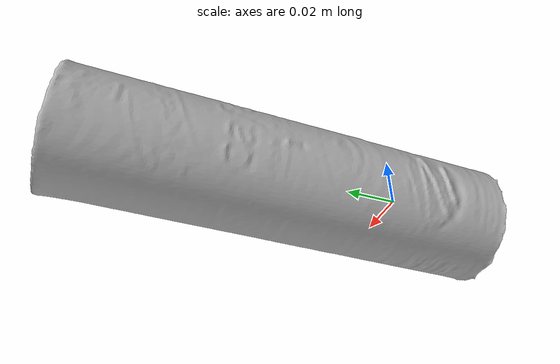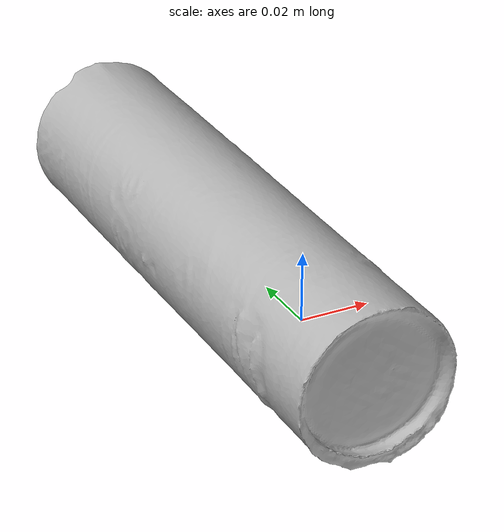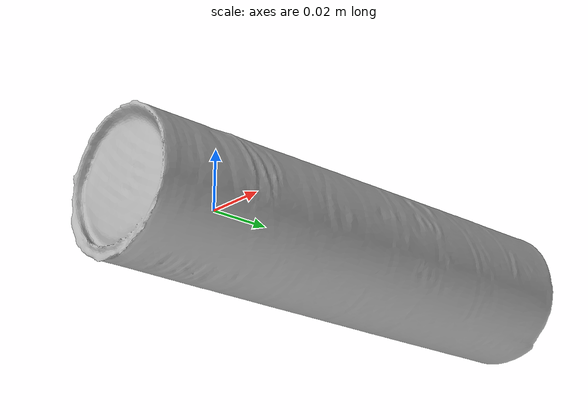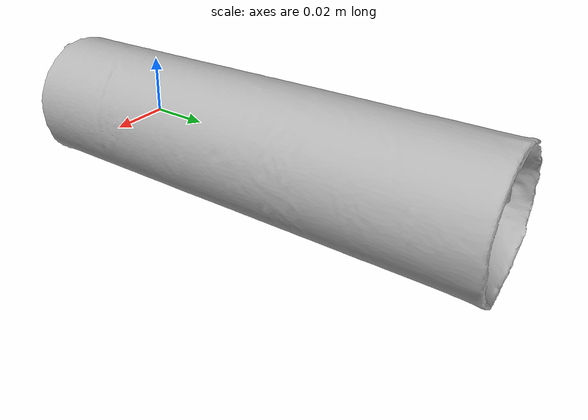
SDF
<?xml version='1.0'?>
<sdf version="1.4">
  <model name="CoffeeCookies">
    <static>false</static>
    <link name="link">
      <inertial>
        <pose>0.0015563776362987449 0.0464476891377232 -0.0006079835661485307 1.5528366666220046 0.7229530629632703 3.1396553481723872</pose>
        <mass>0.028557828322759913</mass>
        <inertia>
          <ixx>7.100635118991339e-05</ixx>
          <ixy>-2.116950446635611e-20</ixy>
          <ixz>1.0771316143908074e-22</ixz>
          <iyy>7.099258539670968e-05</iyy>
          <iyz>1.606754787360625e-22</iyz>
          <izz>7.711842959869263e-06</izz>
        </inertia>
      </inertial>
      <collision name="collision">
        <geometry>
          <mesh>
            <!-- Use a downsampled mesh for collisions -->
            <uri>model:///CoffeeCookies/CoffeeCookies_250_collision.obj</uri>
	        </mesh>
        </geometry>
        <surface>
      </surface>
      </collision>
      <visual name="visual">
        <geometry>
          <mesh>
            <uri>model:///CoffeeCookies/CoffeeCookies_25k_tex.obj</uri>
	        </mesh>
        </geometry>
        <material>
          <script>
            <uri>model:///CoffeeCookies/CoffeeCookies.material</uri>
            <name>CoffeeCookies</name>
          </script>
        </material>
      </visual>
    </link>
  </model>
</sdf>
